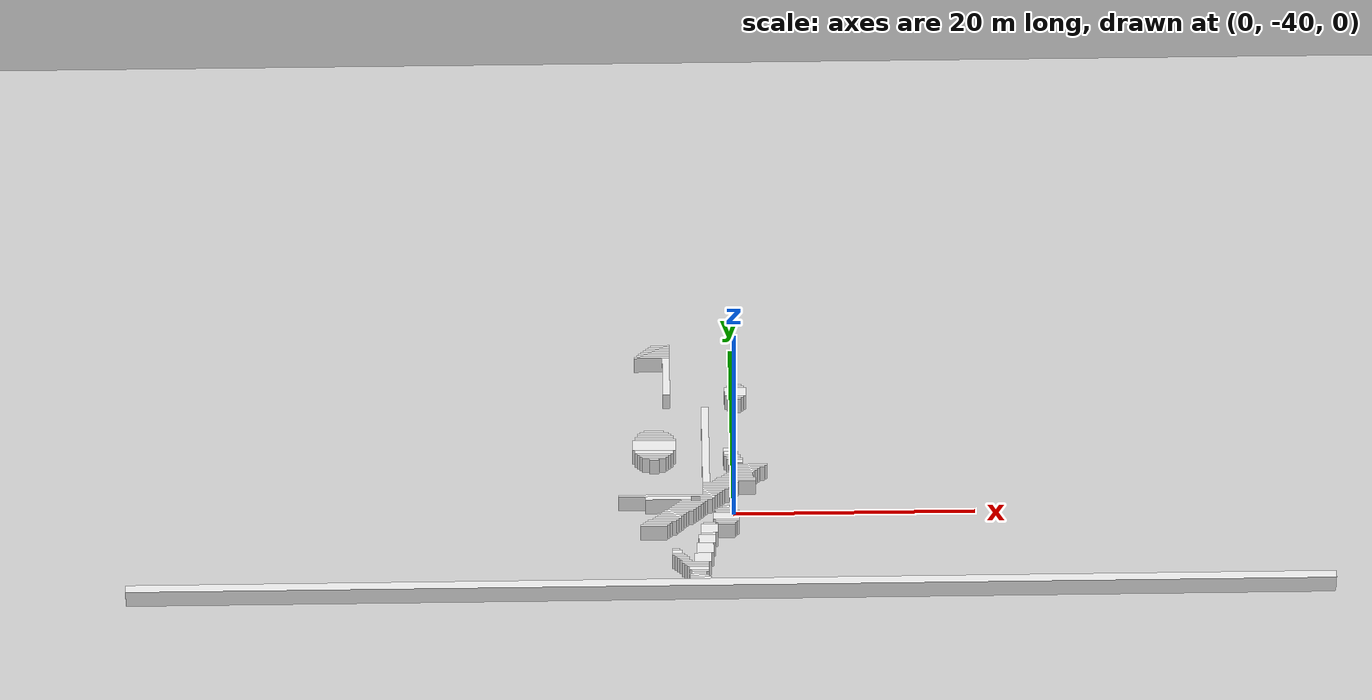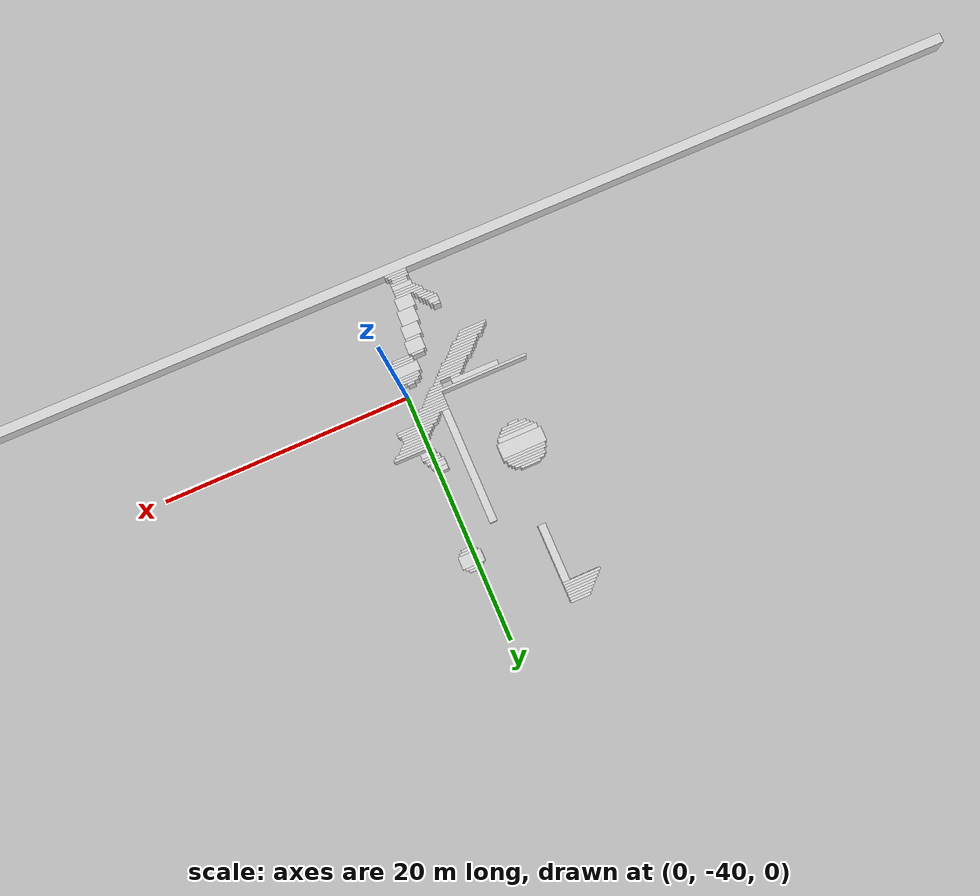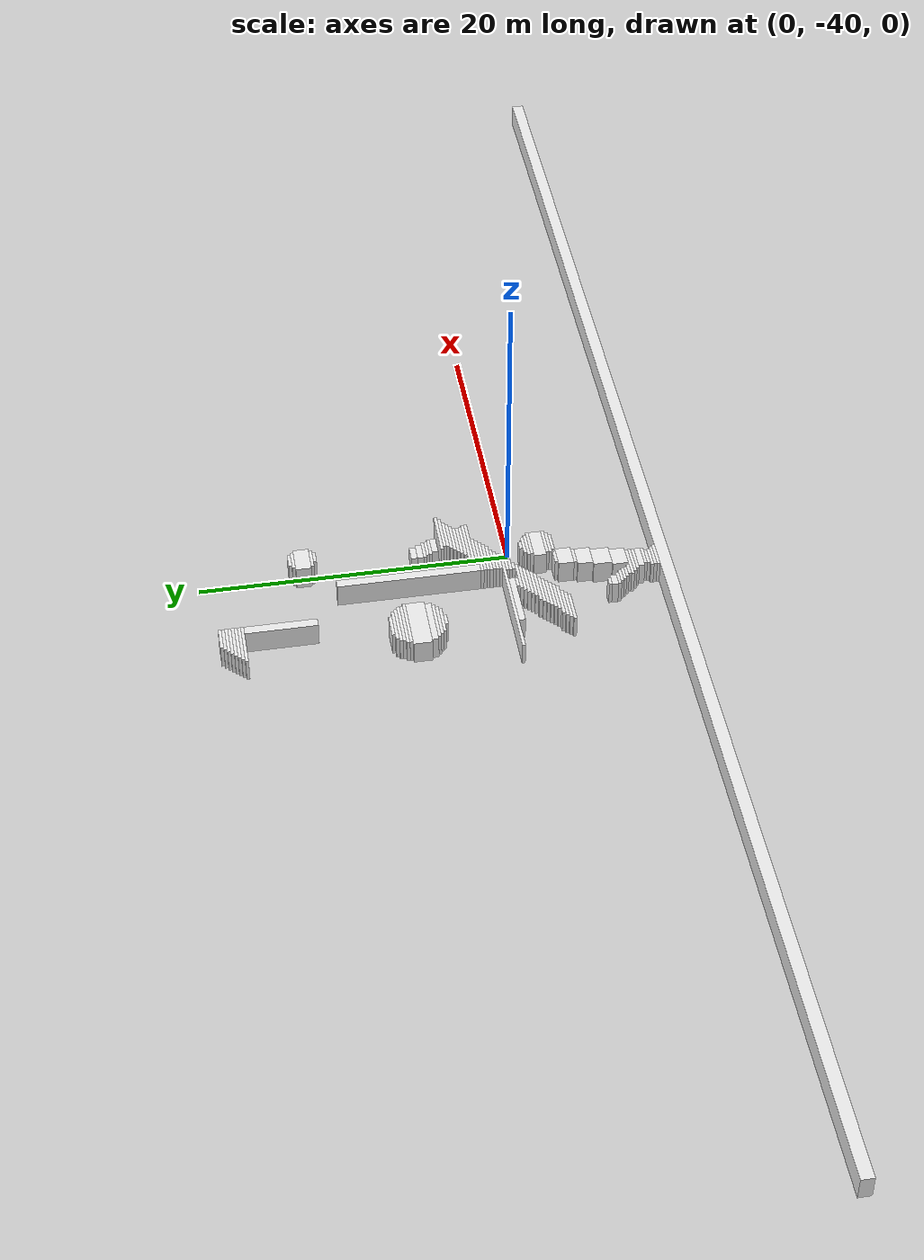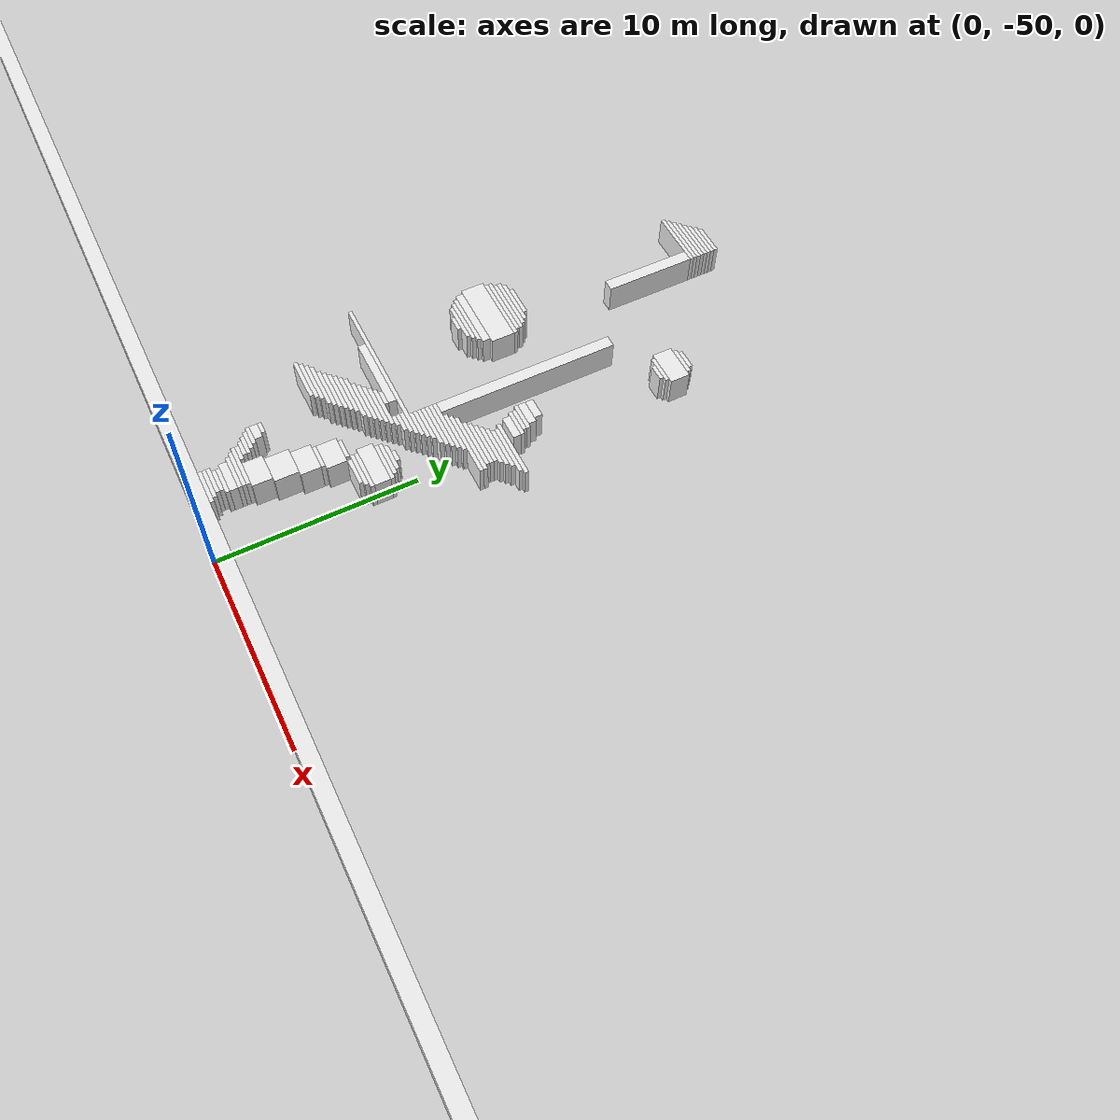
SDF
<sdf version="1.7">
 <world name="default">
  <model name="ground_plane">
   <static>1</static>
   <link name="link">
    <collision name="collision">
     <geometry><plane><normal>0 0 1</normal><size>120 120</size></plane></geometry>
    </collision>
    <visual name="visual">
     <geometry><plane><normal>0 0 1</normal><size>120 120</size></plane></geometry>
     <material>
      <script><uri>file://media/materials/scripts/gazebo.material</uri><name>Gazebo/Grey</name></script>
     </material>
    </visual>
   </link>
  </model>
  <model name="random_complex_03_model">
   <static>1</static>
   <link name="obs_2349">
    <pose>-6.0000 -20.9000 0.8000 0 0 0</pose>
    <collision name="obs_2349_col"><geometry><box><size>1.6000 0.2000 1.6000</size></box></geometry></collision>
    <visual name="obs_2349_vis">
     <geometry><box><size>1.6000 0.2000 1.6000</size></box></geometry>
     <material>
      <script><uri>file://media/materials/scripts/gazebo.material</uri><name>Gazebo/White</name></script>
     </material>
    </visual>
   </link>
   <link name="obs_2354">
    <pose>-6.1000 -21.1000 0.8000 0 0 0</pose>
    <collision name="obs_2354_col"><geometry><box><size>1.8000 0.2000 1.6000</size></box></geometry></collision>
    <visual name="obs_2354_vis">
     <geometry><box><size>1.8000 0.2000 1.6000</size></box></geometry>
     <material>
      <script><uri>file://media/materials/scripts/gazebo.material</uri><name>Gazebo/White</name></script>
     </material>
    </visual>
   </link>
   <link name="obs_2359">
    <pose>-6.2000 -21.3000 0.8000 0 0 0</pose>
    <collision name="obs_2359_col"><geometry><box><size>2.0000 0.2000 1.6000</size></box></geometry></collision>
    <visual name="obs_2359_vis">
     <geometry><box><size>2.0000 0.2000 1.6000</size></box></geometry>
     <material>
      <script><uri>file://media/materials/scripts/gazebo.material</uri><name>Gazebo/White</name></script>
     </material>
    </visual>
   </link>
   <link name="obs_2365">
    <pose>-6.3000 -21.5000 0.8000 0 0 0</pose>
    <collision name="obs_2365_col"><geometry><box><size>2.2000 0.2000 1.6000</size></box></geometry></collision>
    <visual name="obs_2365_vis">
     <geometry><box><size>2.2000 0.2000 1.6000</size></box></geometry>
     <material>
      <script><uri>file://media/materials/scripts/gazebo.material</uri><name>Gazebo/White</name></script>
     </material>
    </visual>
   </link>
   <link name="obs_2370">
    <pose>-6.4000 -21.7000 0.8000 0 0 0</pose>
    <collision name="obs_2370_col"><geometry><box><size>2.4000 0.2000 1.6000</size></box></geometry></collision>
    <visual name="obs_2370_vis">
     <geometry><box><size>2.4000 0.2000 1.6000</size></box></geometry>
     <material>
      <script><uri>file://media/materials/scripts/gazebo.material</uri><name>Gazebo/White</name></script>
     </material>
    </visual>
   </link>
   <link name="obs_2377">
    <pose>-6.5000 -21.9000 0.8000 0 0 0</pose>
    <collision name="obs_2377_col"><geometry><box><size>2.6000 0.2000 1.6000</size></box></geometry></collision>
    <visual name="obs_2377_vis">
     <geometry><box><size>2.6000 0.2000 1.6000</size></box></geometry>
     <material>
      <script><uri>file://media/materials/scripts/gazebo.material</uri><name>Gazebo/White</name></script>
     </material>
    </visual>
   </link>
   <link name="obs_2383">
    <pose>-6.6000 -22.1000 0.8000 0 0 0</pose>
    <collision name="obs_2383_col"><geometry><box><size>2.8000 0.2000 1.6000</size></box></geometry></collision>
    <visual name="obs_2383_vis">
     <geometry><box><size>2.8000 0.2000 1.6000</size></box></geometry>
     <material>
      <script><uri>file://media/materials/scripts/gazebo.material</uri><name>Gazebo/White</name></script>
     </material>
    </visual>
   </link>
   <link name="obs_2389">
    <pose>-6.7000 -22.3000 0.8000 0 0 0</pose>
    <collision name="obs_2389_col"><geometry><box><size>3.0000 0.2000 1.6000</size></box></geometry></collision>
    <visual name="obs_2389_vis">
     <geometry><box><size>3.0000 0.2000 1.6000</size></box></geometry>
     <material>
      <script><uri>file://media/materials/scripts/gazebo.material</uri><name>Gazebo/White</name></script>
     </material>
    </visual>
   </link>
   <link name="obs_2505">
    <pose>0.3000 -25.9000 0.8000 0 0 0</pose>
    <collision name="obs_2505_col"><geometry><box><size>1.0000 0.2000 1.6000</size></box></geometry></collision>
    <visual name="obs_2505_vis">
     <geometry><box><size>1.0000 0.2000 1.6000</size></box></geometry>
     <material>
      <script><uri>file://media/materials/scripts/gazebo.material</uri><name>Gazebo/White</name></script>
     </material>
    </visual>
   </link>
   <link name="obs_2513">
    <pose>0.3000 -26.1000 0.8000 0 0 0</pose>
    <collision name="obs_2513_col"><geometry><box><size>1.4000 0.2000 1.6000</size></box></geometry></collision>
    <visual name="obs_2513_vis">
     <geometry><box><size>1.4000 0.2000 1.6000</size></box></geometry>
     <material>
      <script><uri>file://media/materials/scripts/gazebo.material</uri><name>Gazebo/White</name></script>
     </material>
    </visual>
   </link>
   <link name="obs_2537">
    <pose>-5.5000 -24.7000 0.8000 0 0 0</pose>
    <collision name="obs_2537_col"><geometry><box><size>0.6000 4.6000 1.6000</size></box></geometry></collision>
    <visual name="obs_2537_vis">
     <geometry><box><size>0.6000 4.6000 1.6000</size></box></geometry>
     <material>
      <script><uri>file://media/materials/scripts/gazebo.material</uri><name>Gazebo/White</name></script>
     </material>
    </visual>
   </link>
   <link name="obs_2545">
    <pose>0.3000 -26.7000 0.8000 0 0 0</pose>
    <collision name="obs_2545_col"><geometry><box><size>1.8000 1.0000 1.6000</size></box></geometry></collision>
    <visual name="obs_2545_vis">
     <geometry><box><size>1.8000 1.0000 1.6000</size></box></geometry>
     <material>
      <script><uri>file://media/materials/scripts/gazebo.material</uri><name>Gazebo/White</name></script>
     </material>
    </visual>
   </link>
   <link name="obs_2549">
    <pose>0.3000 -27.3000 0.8000 0 0 0</pose>
    <collision name="obs_2549_col"><geometry><box><size>1.4000 0.2000 1.6000</size></box></geometry></collision>
    <visual name="obs_2549_vis">
     <geometry><box><size>1.4000 0.2000 1.6000</size></box></geometry>
     <material>
      <script><uri>file://media/materials/scripts/gazebo.material</uri><name>Gazebo/White</name></script>
     </material>
    </visual>
   </link>
   <link name="obs_2551">
    <pose>0.4000 -27.5000 0.8000 0 0 0</pose>
    <collision name="obs_2551_col"><geometry><box><size>0.8000 0.2000 1.6000</size></box></geometry></collision>
    <visual name="obs_2551_vis">
     <geometry><box><size>0.8000 0.2000 1.6000</size></box></geometry>
     <material>
      <script><uri>file://media/materials/scripts/gazebo.material</uri><name>Gazebo/White</name></script>
     </material>
    </visual>
   </link>
   <link name="obs_2642">
    <pose>-6.6000 -31.5000 0.8000 0 0 0</pose>
    <collision name="obs_2642_col"><geometry><box><size>1.6000 0.2000 1.6000</size></box></geometry></collision>
    <visual name="obs_2642_vis">
     <geometry><box><size>1.6000 0.2000 1.6000</size></box></geometry>
     <material>
      <script><uri>file://media/materials/scripts/gazebo.material</uri><name>Gazebo/White</name></script>
     </material>
    </visual>
   </link>
   <link name="obs_2650">
    <pose>-6.6000 -31.7000 0.8000 0 0 0</pose>
    <collision name="obs_2650_col"><geometry><box><size>2.4000 0.2000 1.6000</size></box></geometry></collision>
    <visual name="obs_2650_vis">
     <geometry><box><size>2.4000 0.2000 1.6000</size></box></geometry>
     <material>
      <script><uri>file://media/materials/scripts/gazebo.material</uri><name>Gazebo/White</name></script>
     </material>
    </visual>
   </link>
   <link name="obs_2655">
    <pose>-6.6000 -31.9000 0.8000 0 0 0</pose>
    <collision name="obs_2655_col"><geometry><box><size>2.8000 0.2000 1.6000</size></box></geometry></collision>
    <visual name="obs_2655_vis">
     <geometry><box><size>2.8000 0.2000 1.6000</size></box></geometry>
     <material>
      <script><uri>file://media/materials/scripts/gazebo.material</uri><name>Gazebo/White</name></script>
     </material>
    </visual>
   </link>
   <link name="obs_2662">
    <pose>-6.5000 -32.1000 0.8000 0 0 0</pose>
    <collision name="obs_2662_col"><geometry><box><size>3.0000 0.2000 1.6000</size></box></geometry></collision>
    <visual name="obs_2662_vis">
     <geometry><box><size>3.0000 0.2000 1.6000</size></box></geometry>
     <material>
      <script><uri>file://media/materials/scripts/gazebo.material</uri><name>Gazebo/White</name></script>
     </material>
    </visual>
   </link>
   <link name="obs_2669">
    <pose>-6.6000 -32.3000 0.8000 0 0 0</pose>
    <collision name="obs_2669_col"><geometry><box><size>3.2000 0.2000 1.6000</size></box></geometry></collision>
    <visual name="obs_2669_vis">
     <geometry><box><size>3.2000 0.2000 1.6000</size></box></geometry>
     <material>
      <script><uri>file://media/materials/scripts/gazebo.material</uri><name>Gazebo/White</name></script>
     </material>
    </visual>
   </link>
   <link name="obs_2678">
    <pose>-6.5000 -32.5000 0.8000 0 0 0</pose>
    <collision name="obs_2678_col"><geometry><box><size>3.4000 0.2000 1.6000</size></box></geometry></collision>
    <visual name="obs_2678_vis">
     <geometry><box><size>3.4000 0.2000 1.6000</size></box></geometry>
     <material>
      <script><uri>file://media/materials/scripts/gazebo.material</uri><name>Gazebo/White</name></script>
     </material>
    </visual>
   </link>
   <link name="obs_2719">
    <pose>-6.6000 -33.2000 0.8000 0 0 0</pose>
    <collision name="obs_2719_col"><geometry><box><size>3.6000 1.2000 1.6000</size></box></geometry></collision>
    <visual name="obs_2719_vis">
     <geometry><box><size>3.6000 1.2000 1.6000</size></box></geometry>
     <material>
      <script><uri>file://media/materials/scripts/gazebo.material</uri><name>Gazebo/White</name></script>
     </material>
    </visual>
   </link>
   <link name="obs_2726">
    <pose>-0.3000 -33.8000 0.8000 0 0 0</pose>
    <collision name="obs_2726_col"><geometry><box><size>1.0000 0.4000 1.6000</size></box></geometry></collision>
    <visual name="obs_2726_vis">
     <geometry><box><size>1.0000 0.4000 1.6000</size></box></geometry>
     <material>
      <script><uri>file://media/materials/scripts/gazebo.material</uri><name>Gazebo/White</name></script>
     </material>
    </visual>
   </link>
   <link name="obs_2733">
    <pose>-6.6000 -34.0000 0.8000 0 0 0</pose>
    <collision name="obs_2733_col"><geometry><box><size>3.2000 0.4000 1.6000</size></box></geometry></collision>
    <visual name="obs_2733_vis">
     <geometry><box><size>3.2000 0.4000 1.6000</size></box></geometry>
     <material>
      <script><uri>file://media/materials/scripts/gazebo.material</uri><name>Gazebo/White</name></script>
     </material>
    </visual>
   </link>
   <link name="obs_2740">
    <pose>-0.2000 -34.2000 0.8000 0 0 0</pose>
    <collision name="obs_2740_col"><geometry><box><size>1.2000 0.4000 1.6000</size></box></geometry></collision>
    <visual name="obs_2740_vis">
     <geometry><box><size>1.2000 0.4000 1.6000</size></box></geometry>
     <material>
      <script><uri>file://media/materials/scripts/gazebo.material</uri><name>Gazebo/White</name></script>
     </material>
    </visual>
   </link>
   <link name="obs_2743">
    <pose>-6.6000 -34.3000 0.8000 0 0 0</pose>
    <collision name="obs_2743_col"><geometry><box><size>2.8000 0.2000 1.6000</size></box></geometry></collision>
    <visual name="obs_2743_vis">
     <geometry><box><size>2.8000 0.2000 1.6000</size></box></geometry>
     <material>
      <script><uri>file://media/materials/scripts/gazebo.material</uri><name>Gazebo/White</name></script>
     </material>
    </visual>
   </link>
   <link name="obs_2750">
    <pose>-6.6000 -34.5000 0.8000 0 0 0</pose>
    <collision name="obs_2750_col"><geometry><box><size>2.4000 0.2000 1.6000</size></box></geometry></collision>
    <visual name="obs_2750_vis">
     <geometry><box><size>2.4000 0.2000 1.6000</size></box></geometry>
     <material>
      <script><uri>file://media/materials/scripts/gazebo.material</uri><name>Gazebo/White</name></script>
     </material>
    </visual>
   </link>
   <link name="obs_2751">
    <pose>-0.1000 -34.5000 0.8000 0 0 0</pose>
    <collision name="obs_2751_col"><geometry><box><size>1.4000 0.2000 1.6000</size></box></geometry></collision>
    <visual name="obs_2751_vis">
     <geometry><box><size>1.4000 0.2000 1.6000</size></box></geometry>
     <material>
      <script><uri>file://media/materials/scripts/gazebo.material</uri><name>Gazebo/White</name></script>
     </material>
    </visual>
   </link>
   <link name="obs_2759">
    <pose>-6.6000 -34.7000 0.8000 0 0 0</pose>
    <collision name="obs_2759_col"><geometry><box><size>2.0000 0.2000 1.6000</size></box></geometry></collision>
    <visual name="obs_2759_vis">
     <geometry><box><size>2.0000 0.2000 1.6000</size></box></geometry>
     <material>
      <script><uri>file://media/materials/scripts/gazebo.material</uri><name>Gazebo/White</name></script>
     </material>
    </visual>
   </link>
   <link name="obs_2760">
    <pose>0.0000 -34.7000 0.8000 0 0 0</pose>
    <collision name="obs_2760_col"><geometry><box><size>1.2000 0.2000 1.6000</size></box></geometry></collision>
    <visual name="obs_2760_vis">
     <geometry><box><size>1.2000 0.2000 1.6000</size></box></geometry>
     <material>
      <script><uri>file://media/materials/scripts/gazebo.material</uri><name>Gazebo/White</name></script>
     </material>
    </visual>
   </link>
   <link name="obs_2767">
    <pose>-6.6000 -34.9000 0.8000 0 0 0</pose>
    <collision name="obs_2767_col"><geometry><box><size>0.8000 0.2000 1.6000</size></box></geometry></collision>
    <visual name="obs_2767_vis">
     <geometry><box><size>0.8000 0.2000 1.6000</size></box></geometry>
     <material>
      <script><uri>file://media/materials/scripts/gazebo.material</uri><name>Gazebo/White</name></script>
     </material>
    </visual>
   </link>
   <link name="obs_2768">
    <pose>0.1000 -34.9000 0.8000 0 0 0</pose>
    <collision name="obs_2768_col"><geometry><box><size>1.4000 0.2000 1.6000</size></box></geometry></collision>
    <visual name="obs_2768_vis">
     <geometry><box><size>1.4000 0.2000 1.6000</size></box></geometry>
     <material>
      <script><uri>file://media/materials/scripts/gazebo.material</uri><name>Gazebo/White</name></script>
     </material>
    </visual>
   </link>
   <link name="obs_2780">
    <pose>0.2000 -35.2000 0.8000 0 0 0</pose>
    <collision name="obs_2780_col"><geometry><box><size>1.2000 0.4000 1.6000</size></box></geometry></collision>
    <visual name="obs_2780_vis">
     <geometry><box><size>1.2000 0.4000 1.6000</size></box></geometry>
     <material>
      <script><uri>file://media/materials/scripts/gazebo.material</uri><name>Gazebo/White</name></script>
     </material>
    </visual>
   </link>
   <link name="obs_2799">
    <pose>1.3000 -35.7000 0.8000 0 0 0</pose>
    <collision name="obs_2799_col"><geometry><box><size>3.0000 0.2000 1.6000</size></box></geometry></collision>
    <visual name="obs_2799_vis">
     <geometry><box><size>3.0000 0.2000 1.6000</size></box></geometry>
     <material>
      <script><uri>file://media/materials/scripts/gazebo.material</uri><name>Gazebo/White</name></script>
     </material>
    </visual>
   </link>
   <link name="obs_2806">
    <pose>1.3000 -35.9000 0.8000 0 0 0</pose>
    <collision name="obs_2806_col"><geometry><box><size>2.6000 0.2000 1.6000</size></box></geometry></collision>
    <visual name="obs_2806_vis">
     <geometry><box><size>2.6000 0.2000 1.6000</size></box></geometry>
     <material>
      <script><uri>file://media/materials/scripts/gazebo.material</uri><name>Gazebo/White</name></script>
     </material>
    </visual>
   </link>
   <link name="obs_2814">
    <pose>1.1000 -36.1000 0.8000 0 0 0</pose>
    <collision name="obs_2814_col"><geometry><box><size>2.2000 0.2000 1.6000</size></box></geometry></collision>
    <visual name="obs_2814_vis">
     <geometry><box><size>2.2000 0.2000 1.6000</size></box></geometry>
     <material>
      <script><uri>file://media/materials/scripts/gazebo.material</uri><name>Gazebo/White</name></script>
     </material>
    </visual>
   </link>
   <link name="obs_2822">
    <pose>0.9000 -36.3000 0.8000 0 0 0</pose>
    <collision name="obs_2822_col"><geometry><box><size>2.2000 0.2000 1.6000</size></box></geometry></collision>
    <visual name="obs_2822_vis">
     <geometry><box><size>2.2000 0.2000 1.6000</size></box></geometry>
     <material>
      <script><uri>file://media/materials/scripts/gazebo.material</uri><name>Gazebo/White</name></script>
     </material>
    </visual>
   </link>
   <link name="obs_2827">
    <pose>0.7000 -36.5000 0.8000 0 0 0</pose>
    <collision name="obs_2827_col"><geometry><box><size>2.2000 0.2000 1.6000</size></box></geometry></collision>
    <visual name="obs_2827_vis">
     <geometry><box><size>2.2000 0.2000 1.6000</size></box></geometry>
     <material>
      <script><uri>file://media/materials/scripts/gazebo.material</uri><name>Gazebo/White</name></script>
     </material>
    </visual>
   </link>
   <link name="obs_2834">
    <pose>0.5000 -36.7000 0.8000 0 0 0</pose>
    <collision name="obs_2834_col"><geometry><box><size>2.2000 0.2000 1.6000</size></box></geometry></collision>
    <visual name="obs_2834_vis">
     <geometry><box><size>2.2000 0.2000 1.6000</size></box></geometry>
     <material>
      <script><uri>file://media/materials/scripts/gazebo.material</uri><name>Gazebo/White</name></script>
     </material>
    </visual>
   </link>
   <link name="obs_2840">
    <pose>0.4000 -36.9000 0.8000 0 0 0</pose>
    <collision name="obs_2840_col"><geometry><box><size>2.4000 0.2000 1.6000</size></box></geometry></collision>
    <visual name="obs_2840_vis">
     <geometry><box><size>2.4000 0.2000 1.6000</size></box></geometry>
     <material>
      <script><uri>file://media/materials/scripts/gazebo.material</uri><name>Gazebo/White</name></script>
     </material>
    </visual>
   </link>
   <link name="obs_2845">
    <pose>0.3000 -37.1000 0.8000 0 0 0</pose>
    <collision name="obs_2845_col"><geometry><box><size>2.6000 0.2000 1.6000</size></box></geometry></collision>
    <visual name="obs_2845_vis">
     <geometry><box><size>2.6000 0.2000 1.6000</size></box></geometry>
     <material>
      <script><uri>file://media/materials/scripts/gazebo.material</uri><name>Gazebo/White</name></script>
     </material>
    </visual>
   </link>
   <link name="obs_2852">
    <pose>0.2000 -37.3000 0.8000 0 0 0</pose>
    <collision name="obs_2852_col"><geometry><box><size>3.2000 0.2000 1.6000</size></box></geometry></collision>
    <visual name="obs_2852_vis">
     <geometry><box><size>3.2000 0.2000 1.6000</size></box></geometry>
     <material>
      <script><uri>file://media/materials/scripts/gazebo.material</uri><name>Gazebo/White</name></script>
     </material>
    </visual>
   </link>
   <link name="obs_2857">
    <pose>0.1000 -37.5000 0.8000 0 0 0</pose>
    <collision name="obs_2857_col"><geometry><box><size>3.4000 0.2000 1.6000</size></box></geometry></collision>
    <visual name="obs_2857_vis">
     <geometry><box><size>3.4000 0.2000 1.6000</size></box></geometry>
     <material>
      <script><uri>file://media/materials/scripts/gazebo.material</uri><name>Gazebo/White</name></script>
     </material>
    </visual>
   </link>
   <link name="obs_2859">
    <pose>-2.3000 -33.2000 0.8000 0 0 0</pose>
    <collision name="obs_2859_col"><geometry><box><size>0.6000 9.2000 1.6000</size></box></geometry></collision>
    <visual name="obs_2859_vis">
     <geometry><box><size>0.6000 9.2000 1.6000</size></box></geometry>
     <material>
      <script><uri>file://media/materials/scripts/gazebo.material</uri><name>Gazebo/White</name></script>
     </material>
    </visual>
   </link>
   <link name="obs_2863">
    <pose>-0.7000 -37.7000 0.8000 0 0 0</pose>
    <collision name="obs_2863_col"><geometry><box><size>2.2000 0.2000 1.6000</size></box></geometry></collision>
    <visual name="obs_2863_vis">
     <geometry><box><size>2.2000 0.2000 1.6000</size></box></geometry>
     <material>
      <script><uri>file://media/materials/scripts/gazebo.material</uri><name>Gazebo/White</name></script>
     </material>
    </visual>
   </link>
   <link name="obs_2868">
    <pose>-1.2000 -37.9000 0.8000 0 0 0</pose>
    <collision name="obs_2868_col"><geometry><box><size>2.8000 0.2000 1.6000</size></box></geometry></collision>
    <visual name="obs_2868_vis">
     <geometry><box><size>2.8000 0.2000 1.6000</size></box></geometry>
     <material>
      <script><uri>file://media/materials/scripts/gazebo.material</uri><name>Gazebo/White</name></script>
     </material>
    </visual>
   </link>
   <link name="obs_2874">
    <pose>-1.3000 -38.1000 0.8000 0 0 0</pose>
    <collision name="obs_2874_col"><geometry><box><size>2.6000 0.2000 1.6000</size></box></geometry></collision>
    <visual name="obs_2874_vis">
     <geometry><box><size>2.6000 0.2000 1.6000</size></box></geometry>
     <material>
      <script><uri>file://media/materials/scripts/gazebo.material</uri><name>Gazebo/White</name></script>
     </material>
    </visual>
   </link>
   <link name="obs_2881">
    <pose>-1.4000 -38.3000 0.8000 0 0 0</pose>
    <collision name="obs_2881_col"><geometry><box><size>2.4000 0.2000 1.6000</size></box></geometry></collision>
    <visual name="obs_2881_vis">
     <geometry><box><size>2.4000 0.2000 1.6000</size></box></geometry>
     <material>
      <script><uri>file://media/materials/scripts/gazebo.material</uri><name>Gazebo/White</name></script>
     </material>
    </visual>
   </link>
   <link name="obs_2886">
    <pose>-1.5000 -38.5000 0.8000 0 0 0</pose>
    <collision name="obs_2886_col"><geometry><box><size>2.2000 0.2000 1.6000</size></box></geometry></collision>
    <visual name="obs_2886_vis">
     <geometry><box><size>2.2000 0.2000 1.6000</size></box></geometry>
     <material>
      <script><uri>file://media/materials/scripts/gazebo.material</uri><name>Gazebo/White</name></script>
     </material>
    </visual>
   </link>
   <link name="obs_2893">
    <pose>-1.7000 -38.7000 0.8000 0 0 0</pose>
    <collision name="obs_2893_col"><geometry><box><size>1.8000 0.2000 1.6000</size></box></geometry></collision>
    <visual name="obs_2893_vis">
     <geometry><box><size>1.8000 0.2000 1.6000</size></box></geometry>
     <material>
      <script><uri>file://media/materials/scripts/gazebo.material</uri><name>Gazebo/White</name></script>
     </material>
    </visual>
   </link>
   <link name="obs_2898">
    <pose>-1.8000 -38.9000 0.8000 0 0 0</pose>
    <collision name="obs_2898_col"><geometry><box><size>1.6000 0.2000 1.6000</size></box></geometry></collision>
    <visual name="obs_2898_vis">
     <geometry><box><size>1.6000 0.2000 1.6000</size></box></geometry>
     <material>
      <script><uri>file://media/materials/scripts/gazebo.material</uri><name>Gazebo/White</name></script>
     </material>
    </visual>
   </link>
   <link name="obs_2903">
    <pose>-1.9000 -39.1000 0.8000 0 0 0</pose>
    <collision name="obs_2903_col"><geometry><box><size>1.4000 0.2000 1.6000</size></box></geometry></collision>
    <visual name="obs_2903_vis">
     <geometry><box><size>1.4000 0.2000 1.6000</size></box></geometry>
     <material>
      <script><uri>file://media/materials/scripts/gazebo.material</uri><name>Gazebo/White</name></script>
     </material>
    </visual>
   </link>
   <link name="obs_2907">
    <pose>-5.5000 -39.3000 0.8000 0 0 0</pose>
    <collision name="obs_2907_col"><geometry><box><size>8.2000 0.2000 1.6000</size></box></geometry></collision>
    <visual name="obs_2907_vis">
     <geometry><box><size>8.2000 0.2000 1.6000</size></box></geometry>
     <material>
      <script><uri>file://media/materials/scripts/gazebo.material</uri><name>Gazebo/White</name></script>
     </material>
    </visual>
   </link>
   <link name="obs_2910">
    <pose>-2.2000 -39.5000 0.8000 0 0 0</pose>
    <collision name="obs_2910_col"><geometry><box><size>1.2000 0.2000 1.6000</size></box></geometry></collision>
    <visual name="obs_2910_vis">
     <geometry><box><size>1.2000 0.2000 1.6000</size></box></geometry>
     <material>
      <script><uri>file://media/materials/scripts/gazebo.material</uri><name>Gazebo/White</name></script>
     </material>
    </visual>
   </link>
   <link name="obs_2913">
    <pose>-5.5000 -39.6000 0.8000 0 0 0</pose>
    <collision name="obs_2913_col"><geometry><box><size>3.8000 0.4000 1.6000</size></box></geometry></collision>
    <visual name="obs_2913_vis">
     <geometry><box><size>3.8000 0.4000 1.6000</size></box></geometry>
     <material>
      <script><uri>file://media/materials/scripts/gazebo.material</uri><name>Gazebo/White</name></script>
     </material>
    </visual>
   </link>
   <link name="obs_2917">
    <pose>-2.3000 -39.7000 0.8000 0 0 0</pose>
    <collision name="obs_2917_col"><geometry><box><size>1.0000 0.2000 1.6000</size></box></geometry></collision>
    <visual name="obs_2917_vis">
     <geometry><box><size>1.0000 0.2000 1.6000</size></box></geometry>
     <material>
      <script><uri>file://media/materials/scripts/gazebo.material</uri><name>Gazebo/White</name></script>
     </material>
    </visual>
   </link>
   <link name="obs_2922">
    <pose>-4.0000 -39.9000 0.8000 0 0 0</pose>
    <collision name="obs_2922_col"><geometry><box><size>0.8000 0.2000 1.6000</size></box></geometry></collision>
    <visual name="obs_2922_vis">
     <geometry><box><size>0.8000 0.2000 1.6000</size></box></geometry>
     <material>
      <script><uri>file://media/materials/scripts/gazebo.material</uri><name>Gazebo/White</name></script>
     </material>
    </visual>
   </link>
   <link name="obs_2923">
    <pose>-2.5000 -39.9000 0.8000 0 0 0</pose>
    <collision name="obs_2923_col"><geometry><box><size>0.6000 0.2000 1.6000</size></box></geometry></collision>
    <visual name="obs_2923_vis">
     <geometry><box><size>0.6000 0.2000 1.6000</size></box></geometry>
     <material>
      <script><uri>file://media/materials/scripts/gazebo.material</uri><name>Gazebo/White</name></script>
     </material>
    </visual>
   </link>
   <link name="obs_2929">
    <pose>-3.5000 -40.1000 0.8000 0 0 0</pose>
    <collision name="obs_2929_col"><geometry><box><size>2.2000 0.2000 1.6000</size></box></geometry></collision>
    <visual name="obs_2929_vis">
     <geometry><box><size>2.2000 0.2000 1.6000</size></box></geometry>
     <material>
      <script><uri>file://media/materials/scripts/gazebo.material</uri><name>Gazebo/White</name></script>
     </material>
    </visual>
   </link>
   <link name="obs_2936">
    <pose>-3.7000 -40.3000 0.8000 0 0 0</pose>
    <collision name="obs_2936_col"><geometry><box><size>2.2000 0.2000 1.6000</size></box></geometry></collision>
    <visual name="obs_2936_vis">
     <geometry><box><size>2.2000 0.2000 1.6000</size></box></geometry>
     <material>
      <script><uri>file://media/materials/scripts/gazebo.material</uri><name>Gazebo/White</name></script>
     </material>
    </visual>
   </link>
   <link name="obs_2941">
    <pose>-3.9000 -40.5000 0.8000 0 0 0</pose>
    <collision name="obs_2941_col"><geometry><box><size>2.2000 0.2000 1.6000</size></box></geometry></collision>
    <visual name="obs_2941_vis">
     <geometry><box><size>2.2000 0.2000 1.6000</size></box></geometry>
     <material>
      <script><uri>file://media/materials/scripts/gazebo.material</uri><name>Gazebo/White</name></script>
     </material>
    </visual>
   </link>
   <link name="obs_2946">
    <pose>-4.1000 -40.7000 0.8000 0 0 0</pose>
    <collision name="obs_2946_col"><geometry><box><size>2.2000 0.2000 1.6000</size></box></geometry></collision>
    <visual name="obs_2946_vis">
     <geometry><box><size>2.2000 0.2000 1.6000</size></box></geometry>
     <material>
      <script><uri>file://media/materials/scripts/gazebo.material</uri><name>Gazebo/White</name></script>
     </material>
    </visual>
   </link>
   <link name="obs_2947">
    <pose>-0.7000 -40.7000 0.8000 0 0 0</pose>
    <collision name="obs_2947_col"><geometry><box><size>0.6000 0.2000 1.6000</size></box></geometry></collision>
    <visual name="obs_2947_vis">
     <geometry><box><size>0.6000 0.2000 1.6000</size></box></geometry>
     <material>
      <script><uri>file://media/materials/scripts/gazebo.material</uri><name>Gazebo/White</name></script>
     </material>
    </visual>
   </link>
   <link name="obs_2951">
    <pose>-4.3000 -40.9000 0.8000 0 0 0</pose>
    <collision name="obs_2951_col"><geometry><box><size>2.2000 0.2000 1.6000</size></box></geometry></collision>
    <visual name="obs_2951_vis">
     <geometry><box><size>2.2000 0.2000 1.6000</size></box></geometry>
     <material>
      <script><uri>file://media/materials/scripts/gazebo.material</uri><name>Gazebo/White</name></script>
     </material>
    </visual>
   </link>
   <link name="obs_2952">
    <pose>-0.7000 -40.9000 0.8000 0 0 0</pose>
    <collision name="obs_2952_col"><geometry><box><size>1.4000 0.2000 1.6000</size></box></geometry></collision>
    <visual name="obs_2952_vis">
     <geometry><box><size>1.4000 0.2000 1.6000</size></box></geometry>
     <material>
      <script><uri>file://media/materials/scripts/gazebo.material</uri><name>Gazebo/White</name></script>
     </material>
    </visual>
   </link>
   <link name="obs_2956">
    <pose>-4.6000 -41.1000 0.8000 0 0 0</pose>
    <collision name="obs_2956_col"><geometry><box><size>2.4000 0.2000 1.6000</size></box></geometry></collision>
    <visual name="obs_2956_vis">
     <geometry><box><size>2.4000 0.2000 1.6000</size></box></geometry>
     <material>
      <script><uri>file://media/materials/scripts/gazebo.material</uri><name>Gazebo/White</name></script>
     </material>
    </visual>
   </link>
   <link name="obs_2957">
    <pose>-0.7000 -41.1000 0.8000 0 0 0</pose>
    <collision name="obs_2957_col"><geometry><box><size>1.8000 0.2000 1.6000</size></box></geometry></collision>
    <visual name="obs_2957_vis">
     <geometry><box><size>1.8000 0.2000 1.6000</size></box></geometry>
     <material>
      <script><uri>file://media/materials/scripts/gazebo.material</uri><name>Gazebo/White</name></script>
     </material>
    </visual>
   </link>
   <link name="obs_2960">
    <pose>-4.9000 -41.3000 0.8000 0 0 0</pose>
    <collision name="obs_2960_col"><geometry><box><size>2.2000 0.2000 1.6000</size></box></geometry></collision>
    <visual name="obs_2960_vis">
     <geometry><box><size>2.2000 0.2000 1.6000</size></box></geometry>
     <material>
      <script><uri>file://media/materials/scripts/gazebo.material</uri><name>Gazebo/White</name></script>
     </material>
    </visual>
   </link>
   <link name="obs_2961">
    <pose>-0.6000 -41.3000 0.8000 0 0 0</pose>
    <collision name="obs_2961_col"><geometry><box><size>2.0000 0.2000 1.6000</size></box></geometry></collision>
    <visual name="obs_2961_vis">
     <geometry><box><size>2.0000 0.2000 1.6000</size></box></geometry>
     <material>
      <script><uri>file://media/materials/scripts/gazebo.material</uri><name>Gazebo/White</name></script>
     </material>
    </visual>
   </link>
   <link name="obs_2964">
    <pose>-5.1000 -41.5000 0.8000 0 0 0</pose>
    <collision name="obs_2964_col"><geometry><box><size>2.2000 0.2000 1.6000</size></box></geometry></collision>
    <visual name="obs_2964_vis">
     <geometry><box><size>2.2000 0.2000 1.6000</size></box></geometry>
     <material>
      <script><uri>file://media/materials/scripts/gazebo.material</uri><name>Gazebo/White</name></script>
     </material>
    </visual>
   </link>
   <link name="obs_2967">
    <pose>-5.3000 -41.7000 0.8000 0 0 0</pose>
    <collision name="obs_2967_col"><geometry><box><size>2.2000 0.2000 1.6000</size></box></geometry></collision>
    <visual name="obs_2967_vis">
     <geometry><box><size>2.2000 0.2000 1.6000</size></box></geometry>
     <material>
      <script><uri>file://media/materials/scripts/gazebo.material</uri><name>Gazebo/White</name></script>
     </material>
    </visual>
   </link>
   <link name="obs_2970">
    <pose>-5.5000 -41.9000 0.8000 0 0 0</pose>
    <collision name="obs_2970_col"><geometry><box><size>2.2000 0.2000 1.6000</size></box></geometry></collision>
    <visual name="obs_2970_vis">
     <geometry><box><size>2.2000 0.2000 1.6000</size></box></geometry>
     <material>
      <script><uri>file://media/materials/scripts/gazebo.material</uri><name>Gazebo/White</name></script>
     </material>
    </visual>
   </link>
   <link name="obs_2973">
    <pose>-0.7000 -41.8000 0.8000 0 0 0</pose>
    <collision name="obs_2973_col"><geometry><box><size>2.2000 0.8000 1.6000</size></box></geometry></collision>
    <visual name="obs_2973_vis">
     <geometry><box><size>2.2000 0.8000 1.6000</size></box></geometry>
     <material>
      <script><uri>file://media/materials/scripts/gazebo.material</uri><name>Gazebo/White</name></script>
     </material>
    </visual>
   </link>
   <link name="obs_2975">
    <pose>-5.7000 -42.1000 0.8000 0 0 0</pose>
    <collision name="obs_2975_col"><geometry><box><size>2.2000 0.2000 1.6000</size></box></geometry></collision>
    <visual name="obs_2975_vis">
     <geometry><box><size>2.2000 0.2000 1.6000</size></box></geometry>
     <material>
      <script><uri>file://media/materials/scripts/gazebo.material</uri><name>Gazebo/White</name></script>
     </material>
    </visual>
   </link>
   <link name="obs_2979">
    <pose>-6.0000 -42.3000 0.8000 0 0 0</pose>
    <collision name="obs_2979_col"><geometry><box><size>2.4000 0.2000 1.6000</size></box></geometry></collision>
    <visual name="obs_2979_vis">
     <geometry><box><size>2.4000 0.2000 1.6000</size></box></geometry>
     <material>
      <script><uri>file://media/materials/scripts/gazebo.material</uri><name>Gazebo/White</name></script>
     </material>
    </visual>
   </link>
   <link name="obs_2980">
    <pose>-0.6000 -42.3000 0.8000 0 0 0</pose>
    <collision name="obs_2980_col"><geometry><box><size>2.0000 0.2000 1.6000</size></box></geometry></collision>
    <visual name="obs_2980_vis">
     <geometry><box><size>2.0000 0.2000 1.6000</size></box></geometry>
     <material>
      <script><uri>file://media/materials/scripts/gazebo.material</uri><name>Gazebo/White</name></script>
     </material>
    </visual>
   </link>
   <link name="obs_2984">
    <pose>-6.3000 -42.5000 0.8000 0 0 0</pose>
    <collision name="obs_2984_col"><geometry><box><size>2.2000 0.2000 1.6000</size></box></geometry></collision>
    <visual name="obs_2984_vis">
     <geometry><box><size>2.2000 0.2000 1.6000</size></box></geometry>
     <material>
      <script><uri>file://media/materials/scripts/gazebo.material</uri><name>Gazebo/White</name></script>
     </material>
    </visual>
   </link>
   <link name="obs_2985">
    <pose>-0.7000 -42.5000 0.8000 0 0 0</pose>
    <collision name="obs_2985_col"><geometry><box><size>1.8000 0.2000 1.6000</size></box></geometry></collision>
    <visual name="obs_2985_vis">
     <geometry><box><size>1.8000 0.2000 1.6000</size></box></geometry>
     <material>
      <script><uri>file://media/materials/scripts/gazebo.material</uri><name>Gazebo/White</name></script>
     </material>
    </visual>
   </link>
   <link name="obs_2989">
    <pose>-6.5000 -42.7000 0.8000 0 0 0</pose>
    <collision name="obs_2989_col"><geometry><box><size>2.2000 0.2000 1.6000</size></box></geometry></collision>
    <visual name="obs_2989_vis">
     <geometry><box><size>2.2000 0.2000 1.6000</size></box></geometry>
     <material>
      <script><uri>file://media/materials/scripts/gazebo.material</uri><name>Gazebo/White</name></script>
     </material>
    </visual>
   </link>
   <link name="obs_2990">
    <pose>-2.1000 -42.7000 0.8000 0 0 0</pose>
    <collision name="obs_2990_col"><geometry><box><size>1.0000 0.2000 1.6000</size></box></geometry></collision>
    <visual name="obs_2990_vis">
     <geometry><box><size>1.0000 0.2000 1.6000</size></box></geometry>
     <material>
      <script><uri>file://media/materials/scripts/gazebo.material</uri><name>Gazebo/White</name></script>
     </material>
    </visual>
   </link>
   <link name="obs_2991">
    <pose>-0.7000 -42.7000 0.8000 0 0 0</pose>
    <collision name="obs_2991_col"><geometry><box><size>1.4000 0.2000 1.6000</size></box></geometry></collision>
    <visual name="obs_2991_vis">
     <geometry><box><size>1.4000 0.2000 1.6000</size></box></geometry>
     <material>
      <script><uri>file://media/materials/scripts/gazebo.material</uri><name>Gazebo/White</name></script>
     </material>
    </visual>
   </link>
   <link name="obs_2997">
    <pose>-6.7000 -42.9000 0.8000 0 0 0</pose>
    <collision name="obs_2997_col"><geometry><box><size>2.2000 0.2000 1.6000</size></box></geometry></collision>
    <visual name="obs_2997_vis">
     <geometry><box><size>2.2000 0.2000 1.6000</size></box></geometry>
     <material>
      <script><uri>file://media/materials/scripts/gazebo.material</uri><name>Gazebo/White</name></script>
     </material>
    </visual>
   </link>
   <link name="obs_3012">
    <pose>-2.1000 -43.3000 0.8000 0 0 0</pose>
    <collision name="obs_3012_col"><geometry><box><size>1.4000 1.0000 1.6000</size></box></geometry></collision>
    <visual name="obs_3012_vis">
     <geometry><box><size>1.4000 1.0000 1.6000</size></box></geometry>
     <material>
      <script><uri>file://media/materials/scripts/gazebo.material</uri><name>Gazebo/White</name></script>
     </material>
    </visual>
   </link>
   <link name="obs_3020">
    <pose>-2.2000 -43.9000 0.8000 0 0 0</pose>
    <collision name="obs_3020_col"><geometry><box><size>1.2000 0.2000 1.6000</size></box></geometry></collision>
    <visual name="obs_3020_vis">
     <geometry><box><size>1.2000 0.2000 1.6000</size></box></geometry>
     <material>
      <script><uri>file://media/materials/scripts/gazebo.material</uri><name>Gazebo/White</name></script>
     </material>
    </visual>
   </link>
   <link name="obs_3047">
    <pose>-2.3000 -44.5000 0.8000 0 0 0</pose>
    <collision name="obs_3047_col"><geometry><box><size>1.4000 1.0000 1.6000</size></box></geometry></collision>
    <visual name="obs_3047_vis">
     <geometry><box><size>1.4000 1.0000 1.6000</size></box></geometry>
     <material>
      <script><uri>file://media/materials/scripts/gazebo.material</uri><name>Gazebo/White</name></script>
     </material>
    </visual>
   </link>
   <link name="obs_3069">
    <pose>-4.9000 -45.7000 0.8000 0 0 0</pose>
    <collision name="obs_3069_col"><geometry><box><size>0.6000 0.2000 1.6000</size></box></geometry></collision>
    <visual name="obs_3069_vis">
     <geometry><box><size>0.6000 0.2000 1.6000</size></box></geometry>
     <material>
      <script><uri>file://media/materials/scripts/gazebo.material</uri><name>Gazebo/White</name></script>
     </material>
    </visual>
   </link>
   <link name="obs_3080">
    <pose>-2.5000 -45.6000 0.8000 0 0 0</pose>
    <collision name="obs_3080_col"><geometry><box><size>1.4000 1.2000 1.6000</size></box></geometry></collision>
    <visual name="obs_3080_vis">
     <geometry><box><size>1.4000 1.2000 1.6000</size></box></geometry>
     <material>
      <script><uri>file://media/materials/scripts/gazebo.material</uri><name>Gazebo/White</name></script>
     </material>
    </visual>
   </link>
   <link name="obs_3081">
    <pose>-4.8000 -46.0000 0.8000 0 0 0</pose>
    <collision name="obs_3081_col"><geometry><box><size>0.8000 0.4000 1.6000</size></box></geometry></collision>
    <visual name="obs_3081_vis">
     <geometry><box><size>0.8000 0.4000 1.6000</size></box></geometry>
     <material>
      <script><uri>file://media/materials/scripts/gazebo.material</uri><name>Gazebo/White</name></script>
     </material>
    </visual>
   </link>
   <link name="obs_3089">
    <pose>-4.7000 -46.3000 0.8000 0 0 0</pose>
    <collision name="obs_3089_col"><geometry><box><size>1.0000 0.2000 1.6000</size></box></geometry></collision>
    <visual name="obs_3089_vis">
     <geometry><box><size>1.0000 0.2000 1.6000</size></box></geometry>
     <material>
      <script><uri>file://media/materials/scripts/gazebo.material</uri><name>Gazebo/White</name></script>
     </material>
    </visual>
   </link>
   <link name="obs_3096">
    <pose>-4.5000 -46.5000 0.8000 0 0 0</pose>
    <collision name="obs_3096_col"><geometry><box><size>1.0000 0.2000 1.6000</size></box></geometry></collision>
    <visual name="obs_3096_vis">
     <geometry><box><size>1.0000 0.2000 1.6000</size></box></geometry>
     <material>
      <script><uri>file://media/materials/scripts/gazebo.material</uri><name>Gazebo/White</name></script>
     </material>
    </visual>
   </link>
   <link name="obs_3102">
    <pose>-4.3000 -46.7000 0.8000 0 0 0</pose>
    <collision name="obs_3102_col"><geometry><box><size>1.0000 0.2000 1.6000</size></box></geometry></collision>
    <visual name="obs_3102_vis">
     <geometry><box><size>1.0000 0.2000 1.6000</size></box></geometry>
     <material>
      <script><uri>file://media/materials/scripts/gazebo.material</uri><name>Gazebo/White</name></script>
     </material>
    </visual>
   </link>
   <link name="obs_3110">
    <pose>-4.2000 -46.9000 0.8000 0 0 0</pose>
    <collision name="obs_3110_col"><geometry><box><size>0.8000 0.2000 1.6000</size></box></geometry></collision>
    <visual name="obs_3110_vis">
     <geometry><box><size>0.8000 0.2000 1.6000</size></box></geometry>
     <material>
      <script><uri>file://media/materials/scripts/gazebo.material</uri><name>Gazebo/White</name></script>
     </material>
    </visual>
   </link>
   <link name="obs_3114">
    <pose>-2.7000 -46.7000 0.8000 0 0 0</pose>
    <collision name="obs_3114_col"><geometry><box><size>1.4000 1.0000 1.6000</size></box></geometry></collision>
    <visual name="obs_3114_vis">
     <geometry><box><size>1.4000 1.0000 1.6000</size></box></geometry>
     <material>
      <script><uri>file://media/materials/scripts/gazebo.material</uri><name>Gazebo/White</name></script>
     </material>
    </visual>
   </link>
   <link name="obs_3117">
    <pose>-4.0000 -47.1000 0.8000 0 0 0</pose>
    <collision name="obs_3117_col"><geometry><box><size>0.8000 0.2000 1.6000</size></box></geometry></collision>
    <visual name="obs_3117_vis">
     <geometry><box><size>0.8000 0.2000 1.6000</size></box></geometry>
     <material>
      <script><uri>file://media/materials/scripts/gazebo.material</uri><name>Gazebo/White</name></script>
     </material>
    </visual>
   </link>
   <link name="obs_3125">
    <pose>-3.3000 -47.3000 0.8000 0 0 0</pose>
    <collision name="obs_3125_col"><geometry><box><size>2.2000 0.2000 1.6000</size></box></geometry></collision>
    <visual name="obs_3125_vis">
     <geometry><box><size>2.2000 0.2000 1.6000</size></box></geometry>
     <material>
      <script><uri>file://media/materials/scripts/gazebo.material</uri><name>Gazebo/White</name></script>
     </material>
    </visual>
   </link>
   <link name="obs_3132">
    <pose>-3.2000 -47.5000 0.8000 0 0 0</pose>
    <collision name="obs_3132_col"><geometry><box><size>2.0000 0.2000 1.6000</size></box></geometry></collision>
    <visual name="obs_3132_vis">
     <geometry><box><size>2.0000 0.2000 1.6000</size></box></geometry>
     <material>
      <script><uri>file://media/materials/scripts/gazebo.material</uri><name>Gazebo/White</name></script>
     </material>
    </visual>
   </link>
   <link name="obs_3139">
    <pose>-3.1000 -47.7000 0.8000 0 0 0</pose>
    <collision name="obs_3139_col"><geometry><box><size>1.8000 0.2000 1.6000</size></box></geometry></collision>
    <visual name="obs_3139_vis">
     <geometry><box><size>1.8000 0.2000 1.6000</size></box></geometry>
     <material>
      <script><uri>file://media/materials/scripts/gazebo.material</uri><name>Gazebo/White</name></script>
     </material>
    </visual>
   </link>
   <link name="obs_3151">
    <pose>-3.0000 -48.0000 0.8000 0 0 0</pose>
    <collision name="obs_3151_col"><geometry><box><size>1.6000 0.4000 1.6000</size></box></geometry></collision>
    <visual name="obs_3151_vis">
     <geometry><box><size>1.6000 0.4000 1.6000</size></box></geometry>
     <material>
      <script><uri>file://media/materials/scripts/gazebo.material</uri><name>Gazebo/White</name></script>
     </material>
    </visual>
   </link>
   <link name="obs_3159">
    <pose>-2.9000 -48.3000 0.8000 0 0 0</pose>
    <collision name="obs_3159_col"><geometry><box><size>1.4000 0.2000 1.6000</size></box></geometry></collision>
    <visual name="obs_3159_vis">
     <geometry><box><size>1.4000 0.2000 1.6000</size></box></geometry>
     <material>
      <script><uri>file://media/materials/scripts/gazebo.material</uri><name>Gazebo/White</name></script>
     </material>
    </visual>
   </link>
   <link name="obs_3166">
    <pose>-3.0000 -48.5000 0.8000 0 0 0</pose>
    <collision name="obs_3166_col"><geometry><box><size>1.2000 0.2000 1.6000</size></box></geometry></collision>
    <visual name="obs_3166_vis">
     <geometry><box><size>1.2000 0.2000 1.6000</size></box></geometry>
     <material>
      <script><uri>file://media/materials/scripts/gazebo.material</uri><name>Gazebo/White</name></script>
     </material>
    </visual>
   </link>
   <link name="obs_3173">
    <pose>-3.1000 -48.7000 0.8000 0 0 0</pose>
    <collision name="obs_3173_col"><geometry><box><size>1.4000 0.2000 1.6000</size></box></geometry></collision>
    <visual name="obs_3173_vis">
     <geometry><box><size>1.4000 0.2000 1.6000</size></box></geometry>
     <material>
      <script><uri>file://media/materials/scripts/gazebo.material</uri><name>Gazebo/White</name></script>
     </material>
    </visual>
   </link>
   <link name="obs_3179">
    <pose>-3.0000 -48.9000 0.8000 0 0 0</pose>
    <collision name="obs_3179_col"><geometry><box><size>1.6000 0.2000 1.6000</size></box></geometry></collision>
    <visual name="obs_3179_vis">
     <geometry><box><size>1.6000 0.2000 1.6000</size></box></geometry>
     <material>
      <script><uri>file://media/materials/scripts/gazebo.material</uri><name>Gazebo/White</name></script>
     </material>
    </visual>
   </link>
   <link name="obs_3188">
    <pose>-2.9000 -49.1000 0.8000 0 0 0</pose>
    <collision name="obs_3188_col"><geometry><box><size>1.8000 0.2000 1.6000</size></box></geometry></collision>
    <visual name="obs_3188_vis">
     <geometry><box><size>1.8000 0.2000 1.6000</size></box></geometry>
     <material>
      <script><uri>file://media/materials/scripts/gazebo.material</uri><name>Gazebo/White</name></script>
     </material>
    </visual>
   </link>
   <link name="obs_3193">
    <pose>-0.4000 -49.6000 0.8000 0 0 0</pose>
    <collision name="obs_3193_col"><geometry><box><size>99.2000 0.8000 1.6000</size></box></geometry></collision>
    <visual name="obs_3193_vis">
     <geometry><box><size>99.2000 0.8000 1.6000</size></box></geometry>
     <material>
      <script><uri>file://media/materials/scripts/gazebo.material</uri><name>Gazebo/White</name></script>
     </material>
    </visual>
   </link>
  </model>
 </world>
</sdf>
